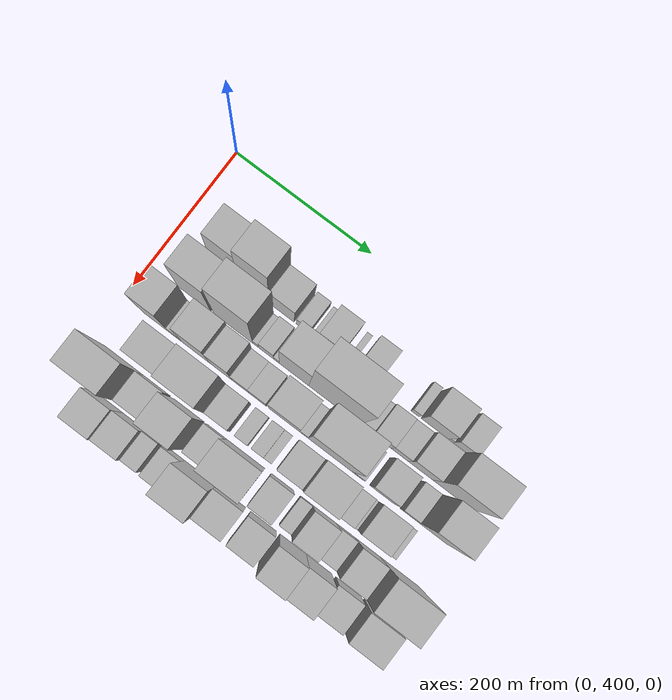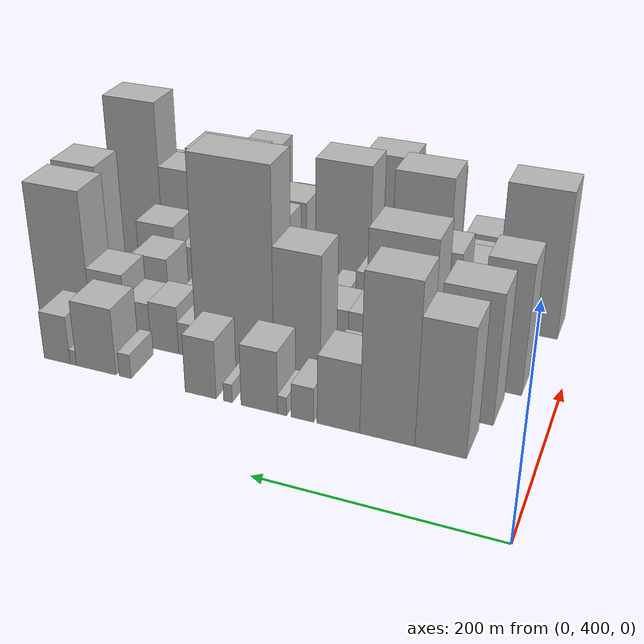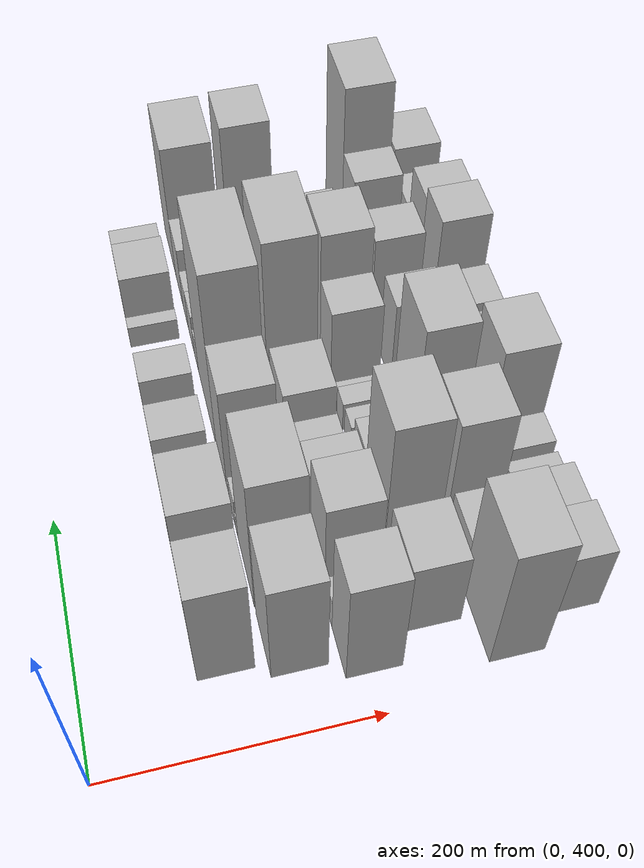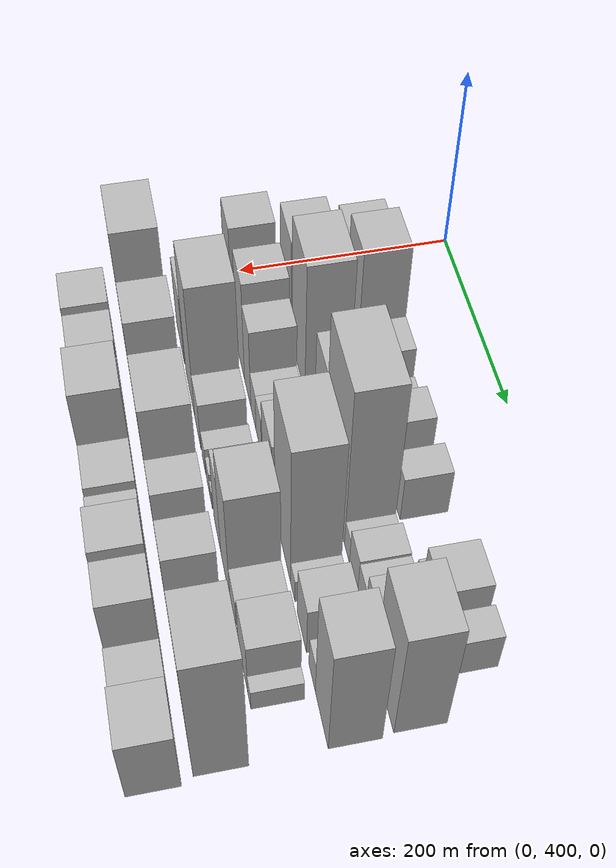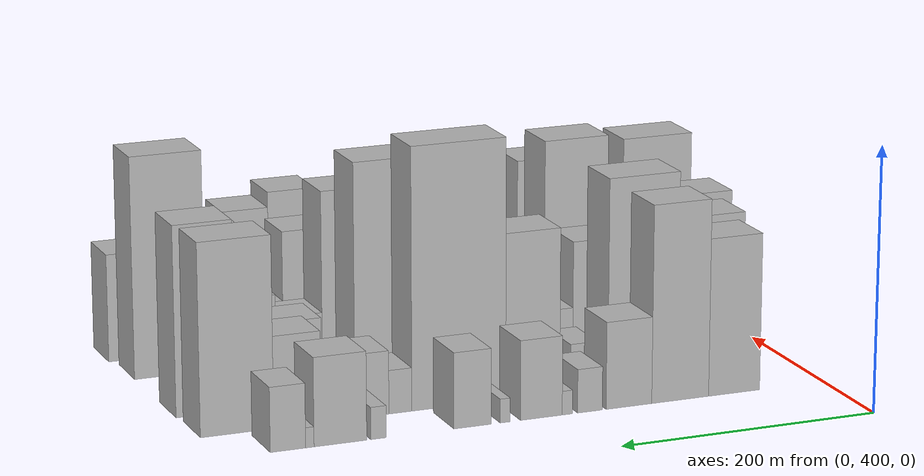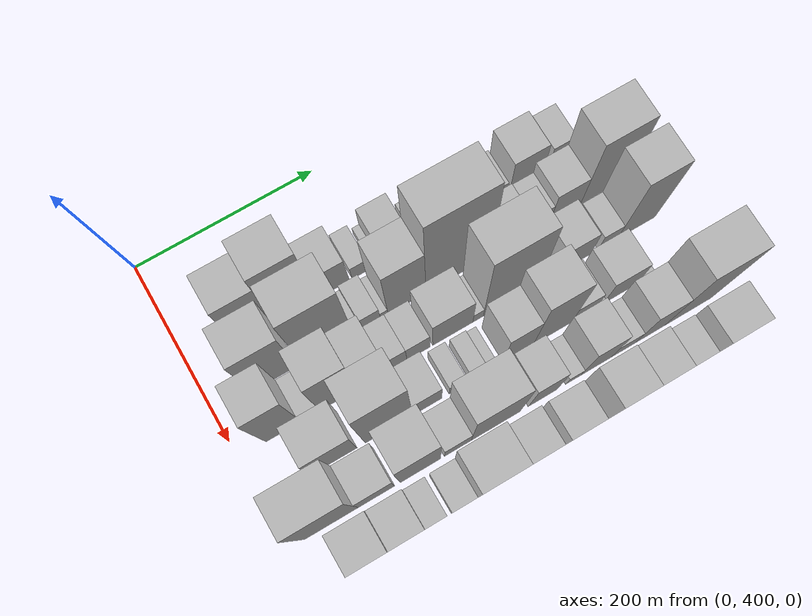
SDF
<sdf version="1.6">
 <world name="default">
  <model name="building_35">
   <static>1</static>
   <pose>100.0000 473.4539 0 0.000000 0.000000 0.000000</pose>
   <link name="link">
    <pose>0 0 60.00 0 0 0</pose>
    <collision name="collision"><geometry><box><size>40.0000 41.6100 120.0000</size></box></geometry></collision>
    <visual name="visual">
     <cast_shadows>0</cast_shadows>
     <geometry><box><size>40.0000 41.6100 120.0000</size></box></geometry>
     <material>
      <script>
       <uri>model://HANNAS_wall/materials/scripts</uri>
       <uri>model://HANNAS_wall/materials/textures</uri>
       <name>vrc/HANNAS_wall</name>
      </script>
     </material>
    </visual>
   </link>
  </model>
  <model name="building_36">
   <static>1</static>
   <pose>100.0000 517.1920 0 0.000000 0.000000 0.000000</pose>
   <link name="link">
    <pose>0 0 75.00 0 0 0</pose>
    <collision name="collision"><geometry><box><size>40.0000 45.8663 150.0000</size></box></geometry></collision>
    <visual name="visual">
     <cast_shadows>0</cast_shadows>
     <geometry><box><size>40.0000 45.8663 150.0000</size></box></geometry>
     <material>
      <script>
       <uri>model://HANNAS_wall/materials/scripts</uri>
       <uri>model://HANNAS_wall/materials/textures</uri>
       <name>vrc/HANNAS_wall</name>
      </script>
     </material>
    </visual>
   </link>
  </model>
  <model name="building_37">
   <static>1</static>
   <pose>100.0000 558.3332 0 0.000000 0.000000 0.000000</pose>
   <link name="link">
    <pose>0 0 33.00 0 0 0</pose>
    <collision name="collision"><geometry><box><size>40.0000 36.4160 66.0000</size></box></geometry></collision>
    <visual name="visual">
     <cast_shadows>0</cast_shadows>
     <geometry><box><size>40.0000 36.4160 66.0000</size></box></geometry>
     <material>
      <script>
       <uri>model://HANNAS_wall/materials/scripts</uri>
       <uri>model://HANNAS_wall/materials/textures</uri>
       <name>vrc/HANNAS_wall</name>
      </script>
     </material>
    </visual>
   </link>
  </model>
  <model name="building_38">
   <static>1</static>
   <pose>100.0000 589.3370 0 0.000000 0.000000 0.000000</pose>
   <link name="link">
    <pose>0 0 16.50 0 0 0</pose>
    <collision name="collision"><geometry><box><size>40.0000 19.5915 33.0000</size></box></geometry></collision>
    <visual name="visual">
     <cast_shadows>0</cast_shadows>
     <geometry><box><size>40.0000 19.5915 33.0000</size></box></geometry>
     <material>
      <script>
       <uri>model://HANNAS_wall/materials/scripts</uri>
       <uri>model://HANNAS_wall/materials/textures</uri>
       <name>vrc/HANNAS_wall</name>
      </script>
     </material>
    </visual>
   </link>
  </model>
  <model name="building_39">
   <static>1</static>
   <pose>100.0000 607.1895 0 0.000000 0.000000 0.000000</pose>
   <link name="link">
    <pose>0 0 9.00 0 0 0</pose>
    <collision name="collision"><geometry><box><size>40.0000 8.1136 18.0000</size></box></geometry></collision>
    <visual name="visual">
     <cast_shadows>0</cast_shadows>
     <geometry><box><size>40.0000 8.1136 18.0000</size></box></geometry>
     <material>
      <script>
       <uri>model://HANNAS_wall/materials/scripts</uri>
       <uri>model://HANNAS_wall/materials/textures</uri>
       <name>vrc/HANNAS_wall</name>
      </script>
     </material>
    </visual>
   </link>
  </model>
  <model name="building_40">
   <static>1</static>
   <pose>100.0000 627.5852 0 0.000000 0.000000 0.000000</pose>
   <link name="link">
    <pose>0 0 30.00 0 0 0</pose>
    <collision name="collision"><geometry><box><size>40.0000 32.6779 60.0000</size></box></geometry></collision>
    <visual name="visual">
     <cast_shadows>0</cast_shadows>
     <geometry><box><size>40.0000 32.6779 60.0000</size></box></geometry>
     <material>
      <script>
       <uri>model://HANNAS_wall/materials/scripts</uri>
       <uri>model://HANNAS_wall/materials/textures</uri>
       <name>vrc/HANNAS_wall</name>
      </script>
     </material>
    </visual>
   </link>
  </model>
  <model name="building_41">
   <static>1</static>
   <pose>100.0000 655.8321 0 0.000000 0.000000 0.000000</pose>
   <link name="link">
    <pose>0 0 9.00 0 0 0</pose>
    <collision name="collision"><geometry><box><size>40.0000 7.8159 18.0000</size></box></geometry></collision>
    <visual name="visual">
     <cast_shadows>0</cast_shadows>
     <geometry><box><size>40.0000 7.8159 18.0000</size></box></geometry>
     <material>
      <script>
       <uri>model://HANNAS_wall/materials/scripts</uri>
       <uri>model://HANNAS_wall/materials/textures</uri>
       <name>vrc/HANNAS_wall</name>
      </script>
     </material>
    </visual>
   </link>
  </model>
  <model name="building_42">
   <static>1</static>
   <pose>100.0000 681.1262 0 0.000000 0.000000 0.000000</pose>
   <link name="link">
    <pose>0 0 28.50 0 0 0</pose>
    <collision name="collision"><geometry><box><size>40.0000 28.7722 57.0000</size></box></geometry></collision>
    <visual name="visual">
     <cast_shadows>0</cast_shadows>
     <geometry><box><size>40.0000 28.7722 57.0000</size></box></geometry>
     <material>
      <script>
       <uri>model://HANNAS_wall/materials/scripts</uri>
       <uri>model://HANNAS_wall/materials/textures</uri>
       <name>vrc/HANNAS_wall</name>
      </script>
     </material>
    </visual>
   </link>
  </model>
  <model name="building_43">
   <static>1</static>
   <pose>100.0000 753.0866 0 0.000000 0.000000 0.000000</pose>
   <link name="link">
    <pose>0 0 12.00 0 0 0</pose>
    <collision name="collision"><geometry><box><size>40.0000 11.7162 24.0000</size></box></geometry></collision>
    <visual name="visual">
     <cast_shadows>0</cast_shadows>
     <geometry><box><size>40.0000 11.7162 24.0000</size></box></geometry>
     <material>
      <script>
       <uri>model://HANNAS_wall/materials/scripts</uri>
       <uri>model://HANNAS_wall/materials/textures</uri>
       <name>vrc/HANNAS_wall</name>
      </script>
     </material>
    </visual>
   </link>
  </model>
  <model name="building_44">
   <static>1</static>
   <pose>100.0000 781.7232 0 0.000000 0.000000 0.000000</pose>
   <link name="link">
    <pose>0 0 33.00 0 0 0</pose>
    <collision name="collision"><geometry><box><size>40.0000 39.5569 66.0000</size></box></geometry></collision>
    <visual name="visual">
     <cast_shadows>0</cast_shadows>
     <geometry><box><size>40.0000 39.5569 66.0000</size></box></geometry>
     <material>
      <script>
       <uri>model://HANNAS_wall/materials/scripts</uri>
       <uri>model://HANNAS_wall/materials/textures</uri>
       <name>vrc/HANNAS_wall</name>
      </script>
     </material>
    </visual>
   </link>
  </model>
  <model name="building_45">
   <static>1</static>
   <pose>100.0000 804.6538 0 0.000000 0.000000 0.000000</pose>
   <link name="link">
    <pose>0 0 7.50 0 0 0</pose>
    <collision name="collision"><geometry><box><size>40.0000 6.3044 15.0000</size></box></geometry></collision>
    <visual name="visual">
     <cast_shadows>0</cast_shadows>
     <geometry><box><size>40.0000 6.3044 15.0000</size></box></geometry>
     <material>
      <script>
       <uri>model://HANNAS_wall/materials/scripts</uri>
       <uri>model://HANNAS_wall/materials/textures</uri>
       <name>vrc/HANNAS_wall</name>
      </script>
     </material>
    </visual>
   </link>
  </model>
  <model name="building_46">
   <static>1</static>
   <pose>100.0000 820.9701 0 0.000000 0.000000 0.000000</pose>
   <link name="link">
    <pose>0 0 24.00 0 0 0</pose>
    <collision name="collision"><geometry><box><size>40.0000 26.3282 48.0000</size></box></geometry></collision>
    <visual name="visual">
     <cast_shadows>0</cast_shadows>
     <geometry><box><size>40.0000 26.3282 48.0000</size></box></geometry>
     <material>
      <script>
       <uri>model://HANNAS_wall/materials/scripts</uri>
       <uri>model://HANNAS_wall/materials/textures</uri>
       <name>vrc/HANNAS_wall</name>
      </script>
     </material>
    </visual>
   </link>
  </model>
  <model name="building_84">
   <static>1</static>
   <pose>149.0000 467.2995 0 0.000000 0.000000 0.000000</pose>
   <link name="link">
    <pose>0 0 61.50 0 0 0</pose>
    <collision name="collision"><geometry><box><size>40.0000 48.5904 123.0000</size></box></geometry></collision>
    <visual name="visual">
     <cast_shadows>0</cast_shadows>
     <geometry><box><size>40.0000 48.5904 123.0000</size></box></geometry>
     <material>
      <script>
       <uri>model://HANNAS_wall/materials/scripts</uri>
       <uri>model://HANNAS_wall/materials/textures</uri>
       <name>vrc/HANNAS_wall</name>
      </script>
     </material>
    </visual>
   </link>
  </model>
  <model name="building_85">
   <static>1</static>
   <pose>149.0000 525.0045 0 0.000000 0.000000 0.000000</pose>
   <link name="link">
    <pose>0 0 79.50 0 0 0</pose>
    <collision name="collision"><geometry><box><size>40.0000 56.8196 159.0000</size></box></geometry></collision>
    <visual name="visual">
     <cast_shadows>0</cast_shadows>
     <geometry><box><size>40.0000 56.8196 159.0000</size></box></geometry>
     <material>
      <script>
       <uri>model://HANNAS_wall/materials/scripts</uri>
       <uri>model://HANNAS_wall/materials/textures</uri>
       <name>vrc/HANNAS_wall</name>
      </script>
     </material>
    </visual>
   </link>
  </model>
  <model name="building_86">
   <static>1</static>
   <pose>149.0000 557.7616 0 0.000000 0.000000 0.000000</pose>
   <link name="link">
    <pose>0 0 10.50 0 0 0</pose>
    <collision name="collision"><geometry><box><size>40.0000 8.6946 21.0000</size></box></geometry></collision>
    <visual name="visual">
     <cast_shadows>0</cast_shadows>
     <geometry><box><size>40.0000 8.6946 21.0000</size></box></geometry>
     <material>
      <script>
       <uri>model://HANNAS_wall/materials/scripts</uri>
       <uri>model://HANNAS_wall/materials/textures</uri>
       <name>vrc/HANNAS_wall</name>
      </script>
     </material>
    </visual>
   </link>
  </model>
  <model name="building_87">
   <static>1</static>
   <pose>149.0000 572.8496 0 0.000000 0.000000 0.000000</pose>
   <link name="link">
    <pose>0 0 18.00 0 0 0</pose>
    <collision name="collision"><geometry><box><size>40.0000 21.4815 36.0000</size></box></geometry></collision>
    <visual name="visual">
     <cast_shadows>0</cast_shadows>
     <geometry><box><size>40.0000 21.4815 36.0000</size></box></geometry>
     <material>
      <script>
       <uri>model://HANNAS_wall/materials/scripts</uri>
       <uri>model://HANNAS_wall/materials/textures</uri>
       <name>vrc/HANNAS_wall</name>
      </script>
     </material>
    </visual>
   </link>
  </model>
  <model name="building_88">
   <static>1</static>
   <pose>149.0000 587.8732 0 0.000000 0.000000 0.000000</pose>
   <link name="link">
    <pose>0 0 9.00 0 0 0</pose>
    <collision name="collision"><geometry><box><size>40.0000 8.5657 18.0000</size></box></geometry></collision>
    <visual name="visual">
     <cast_shadows>0</cast_shadows>
     <geometry><box><size>40.0000 8.5657 18.0000</size></box></geometry>
     <material>
      <script>
       <uri>model://HANNAS_wall/materials/scripts</uri>
       <uri>model://HANNAS_wall/materials/textures</uri>
       <name>vrc/HANNAS_wall</name>
      </script>
     </material>
    </visual>
   </link>
  </model>
  <model name="building_89">
   <static>1</static>
   <pose>149.0000 613.6674 0 0.000000 0.000000 0.000000</pose>
   <link name="link">
    <pose>0 0 63.00 0 0 0</pose>
    <collision name="collision"><geometry><box><size>40.0000 43.0227 126.0000</size></box></geometry></collision>
    <visual name="visual">
     <cast_shadows>0</cast_shadows>
     <geometry><box><size>40.0000 43.0227 126.0000</size></box></geometry>
     <material>
      <script>
       <uri>model://HANNAS_wall/materials/scripts</uri>
       <uri>model://HANNAS_wall/materials/textures</uri>
       <name>vrc/HANNAS_wall</name>
      </script>
     </material>
    </visual>
   </link>
  </model>
  <model name="building_90">
   <static>1</static>
   <pose>149.0000 671.9954 0 0.000000 0.000000 0.000000</pose>
   <link name="link">
    <pose>0 0 99.00 0 0 0</pose>
    <collision name="collision"><geometry><box><size>40.0000 73.6332 198.0000</size></box></geometry></collision>
    <visual name="visual">
     <cast_shadows>0</cast_shadows>
     <geometry><box><size>40.0000 73.6332 198.0000</size></box></geometry>
     <material>
      <script>
       <uri>model://HANNAS_wall/materials/scripts</uri>
       <uri>model://HANNAS_wall/materials/textures</uri>
       <name>vrc/HANNAS_wall</name>
      </script>
     </material>
    </visual>
   </link>
  </model>
  <model name="building_91">
   <static>1</static>
   <pose>149.0000 717.7191 0 0.000000 0.000000 0.000000</pose>
   <link name="link">
    <pose>0 0 16.50 0 0 0</pose>
    <collision name="collision"><geometry><box><size>40.0000 17.8144 33.0000</size></box></geometry></collision>
    <visual name="visual">
     <cast_shadows>0</cast_shadows>
     <geometry><box><size>40.0000 17.8144 33.0000</size></box></geometry>
     <material>
      <script>
       <uri>model://HANNAS_wall/materials/scripts</uri>
       <uri>model://HANNAS_wall/materials/textures</uri>
       <name>vrc/HANNAS_wall</name>
      </script>
     </material>
    </visual>
   </link>
  </model>
  <model name="building_92">
   <static>1</static>
   <pose>149.0000 740.4591 0 0.000000 0.000000 0.000000</pose>
   <link name="link">
    <pose>0 0 24.00 0 0 0</pose>
    <collision name="collision"><geometry><box><size>40.0000 27.6656 48.0000</size></box></geometry></collision>
    <visual name="visual">
     <cast_shadows>0</cast_shadows>
     <geometry><box><size>40.0000 27.6656 48.0000</size></box></geometry>
     <material>
      <script>
       <uri>model://HANNAS_wall/materials/scripts</uri>
       <uri>model://HANNAS_wall/materials/textures</uri>
       <name>vrc/HANNAS_wall</name>
      </script>
     </material>
    </visual>
   </link>
  </model>
  <model name="building_93">
   <static>1</static>
   <pose>149.0000 766.5676 0 0.000000 0.000000 0.000000</pose>
   <link name="link">
    <pose>0 0 22.50 0 0 0</pose>
    <collision name="collision"><geometry><box><size>40.0000 24.5512 45.0000</size></box></geometry></collision>
    <visual name="visual">
     <cast_shadows>0</cast_shadows>
     <geometry><box><size>40.0000 24.5512 45.0000</size></box></geometry>
     <material>
      <script>
       <uri>model://HANNAS_wall/materials/scripts</uri>
       <uri>model://HANNAS_wall/materials/textures</uri>
       <name>vrc/HANNAS_wall</name>
      </script>
     </material>
    </visual>
   </link>
  </model>
  <model name="building_94">
   <static>1</static>
   <pose>149.0000 796.7717 0 0.000000 0.000000 0.000000</pose>
   <link name="link">
    <pose>0 0 34.50 0 0 0</pose>
    <collision name="collision"><geometry><box><size>40.0000 35.8570 69.0000</size></box></geometry></collision>
    <visual name="visual">
     <cast_shadows>0</cast_shadows>
     <geometry><box><size>40.0000 35.8570 69.0000</size></box></geometry>
     <material>
      <script>
       <uri>model://HANNAS_wall/materials/scripts</uri>
       <uri>model://HANNAS_wall/materials/textures</uri>
       <name>vrc/HANNAS_wall</name>
      </script>
     </material>
    </visual>
   </link>
  </model>
  <model name="building_95">
   <static>1</static>
   <pose>149.0000 842.2011 0 0.000000 0.000000 0.000000</pose>
   <link name="link">
    <pose>0 0 72.00 0 0 0</pose>
    <collision name="collision"><geometry><box><size>40.0000 55.0018 144.0000</size></box></geometry></collision>
    <visual name="visual">
     <cast_shadows>0</cast_shadows>
     <geometry><box><size>40.0000 55.0018 144.0000</size></box></geometry>
     <material>
      <script>
       <uri>model://HANNAS_wall/materials/scripts</uri>
       <uri>model://HANNAS_wall/materials/textures</uri>
       <name>vrc/HANNAS_wall</name>
      </script>
     </material>
    </visual>
   </link>
  </model>
  <model name="building_131">
   <static>1</static>
   <pose>198.0000 449.3961 0 0.000000 0.000000 0.000000</pose>
   <link name="link">
    <pose>0 0 63.00 0 0 0</pose>
    <collision name="collision"><geometry><box><size>40.0000 38.1858 126.0000</size></box></geometry></collision>
    <visual name="visual">
     <cast_shadows>0</cast_shadows>
     <geometry><box><size>40.0000 38.1858 126.0000</size></box></geometry>
     <material>
      <script>
       <uri>model://HANNAS_wall/materials/scripts</uri>
       <uri>model://HANNAS_wall/materials/textures</uri>
       <name>vrc/HANNAS_wall</name>
      </script>
     </material>
    </visual>
   </link>
  </model>
  <model name="building_132">
   <static>1</static>
   <pose>198.0000 478.7417 0 0.000000 0.000000 0.000000</pose>
   <link name="link">
    <pose>0 0 18.00 0 0 0</pose>
    <collision name="collision"><geometry><box><size>40.0000 20.5054 36.0000</size></box></geometry></collision>
    <visual name="visual">
     <cast_shadows>0</cast_shadows>
     <geometry><box><size>40.0000 20.5054 36.0000</size></box></geometry>
     <material>
      <script>
       <uri>model://HANNAS_wall/materials/scripts</uri>
       <uri>model://HANNAS_wall/materials/textures</uri>
       <name>vrc/HANNAS_wall</name>
      </script>
     </material>
    </visual>
   </link>
  </model>
  <model name="building_133">
   <static>1</static>
   <pose>198.0000 509.2271 0 0.000000 0.000000 0.000000</pose>
   <link name="link">
    <pose>0 0 61.50 0 0 0</pose>
    <collision name="collision"><geometry><box><size>40.0000 40.4656 123.0000</size></box></geometry></collision>
    <visual name="visual">
     <cast_shadows>0</cast_shadows>
     <geometry><box><size>40.0000 40.4656 123.0000</size></box></geometry>
     <material>
      <script>
       <uri>model://HANNAS_wall/materials/scripts</uri>
       <uri>model://HANNAS_wall/materials/textures</uri>
       <name>vrc/HANNAS_wall</name>
      </script>
     </material>
    </visual>
   </link>
  </model>
  <model name="building_134">
   <static>1</static>
   <pose>198.0000 545.0137 0 0.000000 0.000000 0.000000</pose>
   <link name="link">
    <pose>0 0 49.50 0 0 0</pose>
    <collision name="collision"><geometry><box><size>40.0000 31.1075 99.0000</size></box></geometry></collision>
    <visual name="visual">
     <cast_shadows>0</cast_shadows>
     <geometry><box><size>40.0000 31.1075 99.0000</size></box></geometry>
     <material>
      <script>
       <uri>model://HANNAS_wall/materials/scripts</uri>
       <uri>model://HANNAS_wall/materials/textures</uri>
       <name>vrc/HANNAS_wall</name>
      </script>
     </material>
    </visual>
   </link>
  </model>
  <model name="building_135">
   <static>1</static>
   <pose>198.0000 572.8055 0 0.000000 0.000000 0.000000</pose>
   <link name="link">
    <pose>0 0 24.00 0 0 0</pose>
    <collision name="collision"><geometry><box><size>40.0000 24.4761 48.0000</size></box></geometry></collision>
    <visual name="visual">
     <cast_shadows>0</cast_shadows>
     <geometry><box><size>40.0000 24.4761 48.0000</size></box></geometry>
     <material>
      <script>
       <uri>model://HANNAS_wall/materials/scripts</uri>
       <uri>model://HANNAS_wall/materials/textures</uri>
       <name>vrc/HANNAS_wall</name>
      </script>
     </material>
    </visual>
   </link>
  </model>
  <model name="building_136">
   <static>1</static>
   <pose>198.0000 598.0264 0 0.000000 0.000000 0.000000</pose>
   <link name="link">
    <pose>0 0 24.00 0 0 0</pose>
    <collision name="collision"><geometry><box><size>40.0000 25.9657 48.0000</size></box></geometry></collision>
    <visual name="visual">
     <cast_shadows>0</cast_shadows>
     <geometry><box><size>40.0000 25.9657 48.0000</size></box></geometry>
     <material>
      <script>
       <uri>model://HANNAS_wall/materials/scripts</uri>
       <uri>model://HANNAS_wall/materials/textures</uri>
       <name>vrc/HANNAS_wall</name>
      </script>
     </material>
    </visual>
   </link>
  </model>
  <model name="building_137">
   <static>1</static>
   <pose>198.0000 636.6585 0 0.000000 0.000000 0.000000</pose>
   <link name="link">
    <pose>0 0 39.00 0 0 0</pose>
    <collision name="collision"><geometry><box><size>40.0000 45.2986 78.0000</size></box></geometry></collision>
    <visual name="visual">
     <cast_shadows>0</cast_shadows>
     <geometry><box><size>40.0000 45.2986 78.0000</size></box></geometry>
     <material>
      <script>
       <uri>model://HANNAS_wall/materials/scripts</uri>
       <uri>model://HANNAS_wall/materials/textures</uri>
       <name>vrc/HANNAS_wall</name>
      </script>
     </material>
    </visual>
   </link>
  </model>
  <model name="building_138">
   <static>1</static>
   <pose>198.0000 665.2868 0 0.000000 0.000000 0.000000</pose>
   <link name="link">
    <pose>0 0 13.50 0 0 0</pose>
    <collision name="collision"><geometry><box><size>40.0000 11.9580 27.0000</size></box></geometry></collision>
    <visual name="visual">
     <cast_shadows>0</cast_shadows>
     <geometry><box><size>40.0000 11.9580 27.0000</size></box></geometry>
     <material>
      <script>
       <uri>model://HANNAS_wall/materials/scripts</uri>
       <uri>model://HANNAS_wall/materials/textures</uri>
       <name>vrc/HANNAS_wall</name>
      </script>
     </material>
    </visual>
   </link>
  </model>
  <model name="building_139">
   <static>1</static>
   <pose>198.0000 703.0408 0 0.000000 0.000000 0.000000</pose>
   <link name="link">
    <pose>0 0 88.50 0 0 0</pose>
    <collision name="collision"><geometry><box><size>40.0000 63.5500 177.0000</size></box></geometry></collision>
    <visual name="visual">
     <cast_shadows>0</cast_shadows>
     <geometry><box><size>40.0000 63.5500 177.0000</size></box></geometry>
     <material>
      <script>
       <uri>model://HANNAS_wall/materials/scripts</uri>
       <uri>model://HANNAS_wall/materials/textures</uri>
       <name>vrc/HANNAS_wall</name>
      </script>
     </material>
    </visual>
   </link>
  </model>
  <model name="building_140">
   <static>1</static>
   <pose>198.0000 743.2439 0 0.000000 0.000000 0.000000</pose>
   <link name="link">
    <pose>0 0 15.00 0 0 0</pose>
    <collision name="collision"><geometry><box><size>40.0000 16.8561 30.0000</size></box></geometry></collision>
    <visual name="visual">
     <cast_shadows>0</cast_shadows>
     <geometry><box><size>40.0000 16.8561 30.0000</size></box></geometry>
     <material>
      <script>
       <uri>model://HANNAS_wall/materials/scripts</uri>
       <uri>model://HANNAS_wall/materials/textures</uri>
       <name>vrc/HANNAS_wall</name>
      </script>
     </material>
    </visual>
   </link>
  </model>
  <model name="building_141">
   <static>1</static>
   <pose>198.0000 778.1643 0 0.000000 0.000000 0.000000</pose>
   <link name="link">
    <pose>0 0 31.50 0 0 0</pose>
    <collision name="collision"><geometry><box><size>40.0000 34.9846 63.0000</size></box></geometry></collision>
    <visual name="visual">
     <cast_shadows>0</cast_shadows>
     <geometry><box><size>40.0000 34.9846 63.0000</size></box></geometry>
     <material>
      <script>
       <uri>model://HANNAS_wall/materials/scripts</uri>
       <uri>model://HANNAS_wall/materials/textures</uri>
       <name>vrc/HANNAS_wall</name>
      </script>
     </material>
    </visual>
   </link>
  </model>
  <model name="building_142">
   <static>1</static>
   <pose>198.0000 816.1529 0 0.000000 0.000000 0.000000</pose>
   <link name="link">
    <pose>0 0 19.50 0 0 0</pose>
    <collision name="collision"><geometry><box><size>40.0000 22.9926 39.0000</size></box></geometry></collision>
    <visual name="visual">
     <cast_shadows>0</cast_shadows>
     <geometry><box><size>40.0000 22.9926 39.0000</size></box></geometry>
     <material>
      <script>
       <uri>model://HANNAS_wall/materials/scripts</uri>
       <uri>model://HANNAS_wall/materials/textures</uri>
       <name>vrc/HANNAS_wall</name>
      </script>
     </material>
    </visual>
   </link>
  </model>
  <model name="building_143">
   <static>1</static>
   <pose>198.0000 849.9334 0 0.000000 0.000000 0.000000</pose>
   <link name="link">
    <pose>0 0 72.00 0 0 0</pose>
    <collision name="collision"><geometry><box><size>40.0000 44.5684 144.0000</size></box></geometry></collision>
    <visual name="visual">
     <cast_shadows>0</cast_shadows>
     <geometry><box><size>40.0000 44.5684 144.0000</size></box></geometry>
     <material>
      <script>
       <uri>model://HANNAS_wall/materials/scripts</uri>
       <uri>model://HANNAS_wall/materials/textures</uri>
       <name>vrc/HANNAS_wall</name>
      </script>
     </material>
    </visual>
   </link>
  </model>
  <model name="building_184">
   <static>1</static>
   <pose>247.0000 477.7658 0 0.000000 0.000000 0.000000</pose>
   <link name="link">
    <pose>0 0 43.50 0 0 0</pose>
    <collision name="collision"><geometry><box><size>40.0000 48.4591 87.0000</size></box></geometry></collision>
    <visual name="visual">
     <cast_shadows>0</cast_shadows>
     <geometry><box><size>40.0000 48.4591 87.0000</size></box></geometry>
     <material>
      <script>
       <uri>model://HANNAS_wall/materials/scripts</uri>
       <uri>model://HANNAS_wall/materials/textures</uri>
       <name>vrc/HANNAS_wall</name>
      </script>
     </material>
    </visual>
   </link>
  </model>
  <model name="building_185">
   <static>1</static>
   <pose>247.0000 536.9927 0 0.000000 0.000000 0.000000</pose>
   <link name="link">
    <pose>0 0 82.50 0 0 0</pose>
    <collision name="collision"><geometry><box><size>40.0000 51.9947 165.0000</size></box></geometry></collision>
    <visual name="visual">
     <cast_shadows>0</cast_shadows>
     <geometry><box><size>40.0000 51.9947 165.0000</size></box></geometry>
     <material>
      <script>
       <uri>model://HANNAS_wall/materials/scripts</uri>
       <uri>model://HANNAS_wall/materials/textures</uri>
       <name>vrc/HANNAS_wall</name>
      </script>
     </material>
    </visual>
   </link>
  </model>
  <model name="building_186">
   <static>1</static>
   <pose>247.0000 579.1735 0 0.000000 0.000000 0.000000</pose>
   <link name="link">
    <pose>0 0 30.00 0 0 0</pose>
    <collision name="collision"><geometry><box><size>40.0000 32.3670 60.0000</size></box></geometry></collision>
    <visual name="visual">
     <cast_shadows>0</cast_shadows>
     <geometry><box><size>40.0000 32.3670 60.0000</size></box></geometry>
     <material>
      <script>
       <uri>model://HANNAS_wall/materials/scripts</uri>
       <uri>model://HANNAS_wall/materials/textures</uri>
       <name>vrc/HANNAS_wall</name>
      </script>
     </material>
    </visual>
   </link>
  </model>
  <model name="building_187">
   <static>1</static>
   <pose>247.0000 612.7153 0 0.000000 0.000000 0.000000</pose>
   <link name="link">
    <pose>0 0 18.00 0 0 0</pose>
    <collision name="collision"><geometry><box><size>40.0000 18.7165 36.0000</size></box></geometry></collision>
    <visual name="visual">
     <cast_shadows>0</cast_shadows>
     <geometry><box><size>40.0000 18.7165 36.0000</size></box></geometry>
     <material>
      <script>
       <uri>model://HANNAS_wall/materials/scripts</uri>
       <uri>model://HANNAS_wall/materials/textures</uri>
       <name>vrc/HANNAS_wall</name>
      </script>
     </material>
    </visual>
   </link>
  </model>
  <model name="building_188">
   <static>1</static>
   <pose>247.0000 635.9235 0 0.000000 0.000000 0.000000</pose>
   <link name="link">
    <pose>0 0 16.50 0 0 0</pose>
    <collision name="collision"><geometry><box><size>40.0000 17.7000 33.0000</size></box></geometry></collision>
    <visual name="visual">
     <cast_shadows>0</cast_shadows>
     <geometry><box><size>40.0000 17.7000 33.0000</size></box></geometry>
     <material>
      <script>
       <uri>model://HANNAS_wall/materials/scripts</uri>
       <uri>model://HANNAS_wall/materials/textures</uri>
       <name>vrc/HANNAS_wall</name>
      </script>
     </material>
    </visual>
   </link>
  </model>
  <model name="building_189">
   <static>1</static>
   <pose>247.0000 650.4575 0 0.000000 0.000000 0.000000</pose>
   <link name="link">
    <pose>0 0 12.00 0 0 0</pose>
    <collision name="collision"><geometry><box><size>40.0000 11.3680 24.0000</size></box></geometry></collision>
    <visual name="visual">
     <cast_shadows>0</cast_shadows>
     <geometry><box><size>40.0000 11.3680 24.0000</size></box></geometry>
     <material>
      <script>
       <uri>model://HANNAS_wall/materials/scripts</uri>
       <uri>model://HANNAS_wall/materials/textures</uri>
       <name>vrc/HANNAS_wall</name>
      </script>
     </material>
    </visual>
   </link>
  </model>
  <model name="building_190">
   <static>1</static>
   <pose>247.0000 681.1887 0 0.000000 0.000000 0.000000</pose>
   <link name="link">
    <pose>0 0 48.00 0 0 0</pose>
    <collision name="collision"><geometry><box><size>40.0000 34.0944 96.0000</size></box></geometry></collision>
    <visual name="visual">
     <cast_shadows>0</cast_shadows>
     <geometry><box><size>40.0000 34.0944 96.0000</size></box></geometry>
     <material>
      <script>
       <uri>model://HANNAS_wall/materials/scripts</uri>
       <uri>model://HANNAS_wall/materials/textures</uri>
       <name>vrc/HANNAS_wall</name>
      </script>
     </material>
    </visual>
   </link>
  </model>
  <model name="building_191">
   <static>1</static>
   <pose>247.0000 720.3317 0 0.000000 0.000000 0.000000</pose>
   <link name="link">
    <pose>0 0 72.00 0 0 0</pose>
    <collision name="collision"><geometry><box><size>40.0000 44.1915 144.0000</size></box></geometry></collision>
    <visual name="visual">
     <cast_shadows>0</cast_shadows>
     <geometry><box><size>40.0000 44.1915 144.0000</size></box></geometry>
     <material>
      <script>
       <uri>model://HANNAS_wall/materials/scripts</uri>
       <uri>model://HANNAS_wall/materials/textures</uri>
       <name>vrc/HANNAS_wall</name>
      </script>
     </material>
    </visual>
   </link>
  </model>
  <model name="building_192">
   <static>1</static>
   <pose>247.0000 756.8738 0 0.000000 0.000000 0.000000</pose>
   <link name="link">
    <pose>0 0 25.50 0 0 0</pose>
    <collision name="collision"><geometry><box><size>40.0000 28.8927 51.0000</size></box></geometry></collision>
    <visual name="visual">
     <cast_shadows>0</cast_shadows>
     <geometry><box><size>40.0000 28.8927 51.0000</size></box></geometry>
     <material>
      <script>
       <uri>model://HANNAS_wall/materials/scripts</uri>
       <uri>model://HANNAS_wall/materials/textures</uri>
       <name>vrc/HANNAS_wall</name>
      </script>
     </material>
    </visual>
   </link>
  </model>
  <model name="building_193">
   <static>1</static>
   <pose>247.0000 775.0537 0 0.000000 0.000000 0.000000</pose>
   <link name="link">
    <pose>0 0 9.00 0 0 0</pose>
    <collision name="collision"><geometry><box><size>40.0000 7.4670 18.0000</size></box></geometry></collision>
    <visual name="visual">
     <cast_shadows>0</cast_shadows>
     <geometry><box><size>40.0000 7.4670 18.0000</size></box></geometry>
     <material>
      <script>
       <uri>model://HANNAS_wall/materials/scripts</uri>
       <uri>model://HANNAS_wall/materials/textures</uri>
       <name>vrc/HANNAS_wall</name>
      </script>
     </material>
    </visual>
   </link>
  </model>
  <model name="building_194">
   <static>1</static>
   <pose>247.0000 798.5951 0 0.000000 0.000000 0.000000</pose>
   <link name="link">
    <pose>0 0 34.50 0 0 0</pose>
    <collision name="collision"><geometry><box><size>40.0000 39.6158 69.0000</size></box></geometry></collision>
    <visual name="visual">
     <cast_shadows>0</cast_shadows>
     <geometry><box><size>40.0000 39.6158 69.0000</size></box></geometry>
     <material>
      <script>
       <uri>model://HANNAS_wall/materials/scripts</uri>
       <uri>model://HANNAS_wall/materials/textures</uri>
       <name>vrc/HANNAS_wall</name>
      </script>
     </material>
    </visual>
   </link>
  </model>
  <model name="building_195">
   <static>1</static>
   <pose>247.0000 825.0973 0 0.000000 0.000000 0.000000</pose>
   <link name="link">
    <pose>0 0 13.50 0 0 0</pose>
    <collision name="collision"><geometry><box><size>40.0000 13.3885 27.0000</size></box></geometry></collision>
    <visual name="visual">
     <cast_shadows>0</cast_shadows>
     <geometry><box><size>40.0000 13.3885 27.0000</size></box></geometry>
     <material>
      <script>
       <uri>model://HANNAS_wall/materials/scripts</uri>
       <uri>model://HANNAS_wall/materials/textures</uri>
       <name>vrc/HANNAS_wall</name>
      </script>
     </material>
    </visual>
   </link>
  </model>
  <model name="building_229">
   <static>1</static>
   <pose>296.0000 447.2463 0 0.000000 0.000000 0.000000</pose>
   <link name="link">
    <pose>0 0 73.50 0 0 0</pose>
    <collision name="collision"><geometry><box><size>40.0000 57.8073 147.0000</size></box></geometry></collision>
    <visual name="visual">
     <cast_shadows>0</cast_shadows>
     <geometry><box><size>40.0000 57.8073 147.0000</size></box></geometry>
     <material>
      <script>
       <uri>model://HANNAS_wall/materials/scripts</uri>
       <uri>model://HANNAS_wall/materials/textures</uri>
       <name>vrc/HANNAS_wall</name>
      </script>
     </material>
    </visual>
   </link>
  </model>
  <model name="building_230">
   <static>1</static>
   <pose>296.0000 495.5338 0 0.000000 0.000000 0.000000</pose>
   <link name="link">
    <pose>0 0 33.00 0 0 0</pose>
    <collision name="collision"><geometry><box><size>40.0000 38.7677 66.0000</size></box></geometry></collision>
    <visual name="visual">
     <cast_shadows>0</cast_shadows>
     <geometry><box><size>40.0000 38.7677 66.0000</size></box></geometry>
     <material>
      <script>
       <uri>model://HANNAS_wall/materials/scripts</uri>
       <uri>model://HANNAS_wall/materials/textures</uri>
       <name>vrc/HANNAS_wall</name>
      </script>
     </material>
    </visual>
   </link>
  </model>
  <model name="building_231">
   <static>1</static>
   <pose>296.0000 542.9714 0 0.000000 0.000000 0.000000</pose>
   <link name="link">
    <pose>0 0 69.00 0 0 0</pose>
    <collision name="collision"><geometry><box><size>40.0000 44.1076 138.0000</size></box></geometry></collision>
    <visual name="visual">
     <cast_shadows>0</cast_shadows>
     <geometry><box><size>40.0000 44.1076 138.0000</size></box></geometry>
     <material>
      <script>
       <uri>model://HANNAS_wall/materials/scripts</uri>
       <uri>model://HANNAS_wall/materials/textures</uri>
       <name>vrc/HANNAS_wall</name>
      </script>
     </material>
    </visual>
   </link>
  </model>
  <model name="building_232">
   <static>1</static>
   <pose>296.0000 583.7123 0 0.000000 0.000000 0.000000</pose>
   <link name="link">
    <pose>0 0 25.50 0 0 0</pose>
    <collision name="collision"><geometry><box><size>40.0000 29.3743 51.0000</size></box></geometry></collision>
    <visual name="visual">
     <cast_shadows>0</cast_shadows>
     <geometry><box><size>40.0000 29.3743 51.0000</size></box></geometry>
     <material>
      <script>
       <uri>model://HANNAS_wall/materials/scripts</uri>
       <uri>model://HANNAS_wall/materials/textures</uri>
       <name>vrc/HANNAS_wall</name>
      </script>
     </material>
    </visual>
   </link>
  </model>
  <model name="building_233">
   <static>1</static>
   <pose>296.0000 625.8522 0 0.000000 0.000000 0.000000</pose>
   <link name="link">
    <pose>0 0 70.50 0 0 0</pose>
    <collision name="collision"><geometry><box><size>40.0000 54.9053 141.0000</size></box></geometry></collision>
    <visual name="visual">
     <cast_shadows>0</cast_shadows>
     <geometry><box><size>40.0000 54.9053 141.0000</size></box></geometry>
     <material>
      <script>
       <uri>model://HANNAS_wall/materials/scripts</uri>
       <uri>model://HANNAS_wall/materials/textures</uri>
       <name>vrc/HANNAS_wall</name>
      </script>
     </material>
    </visual>
   </link>
  </model>
  <model name="building_234">
   <static>1</static>
   <pose>296.0000 678.5001 0 0.000000 0.000000 0.000000</pose>
   <link name="link">
    <pose>0 0 46.50 0 0 0</pose>
    <collision name="collision"><geometry><box><size>40.0000 32.3905 93.0000</size></box></geometry></collision>
    <visual name="visual">
     <cast_shadows>0</cast_shadows>
     <geometry><box><size>40.0000 32.3905 93.0000</size></box></geometry>
     <material>
      <script>
       <uri>model://HANNAS_wall/materials/scripts</uri>
       <uri>model://HANNAS_wall/materials/textures</uri>
       <name>vrc/HANNAS_wall</name>
      </script>
     </material>
    </visual>
   </link>
  </model>
  <model name="building_235">
   <static>1</static>
   <pose>296.0000 713.2210 0 0.000000 0.000000 0.000000</pose>
   <link name="link">
    <pose>0 0 15.00 0 0 0</pose>
    <collision name="collision"><geometry><box><size>40.0000 17.0513 30.0000</size></box></geometry></collision>
    <visual name="visual">
     <cast_shadows>0</cast_shadows>
     <geometry><box><size>40.0000 17.0513 30.0000</size></box></geometry>
     <material>
      <script>
       <uri>model://HANNAS_wall/materials/scripts</uri>
       <uri>model://HANNAS_wall/materials/textures</uri>
       <name>vrc/HANNAS_wall</name>
      </script>
     </material>
    </visual>
   </link>
  </model>
  <model name="building_236">
   <static>1</static>
   <pose>296.0000 738.9881 0 0.000000 0.000000 0.000000</pose>
   <link name="link">
    <pose>0 0 51.00 0 0 0</pose>
    <collision name="collision"><geometry><box><size>40.0000 34.4827 102.0000</size></box></geometry></collision>
    <visual name="visual">
     <cast_shadows>0</cast_shadows>
     <geometry><box><size>40.0000 34.4827 102.0000</size></box></geometry>
     <material>
      <script>
       <uri>model://HANNAS_wall/materials/scripts</uri>
       <uri>model://HANNAS_wall/materials/textures</uri>
       <name>vrc/HANNAS_wall</name>
      </script>
     </material>
    </visual>
   </link>
  </model>
  <model name="building_237">
   <static>1</static>
   <pose>296.0000 769.9969 0 0.000000 0.000000 0.000000</pose>
   <link name="link">
    <pose>0 0 24.00 0 0 0</pose>
    <collision name="collision"><geometry><box><size>40.0000 27.5350 48.0000</size></box></geometry></collision>
    <visual name="visual">
     <cast_shadows>0</cast_shadows>
     <geometry><box><size>40.0000 27.5350 48.0000</size></box></geometry>
     <material>
      <script>
       <uri>model://HANNAS_wall/materials/scripts</uri>
       <uri>model://HANNAS_wall/materials/textures</uri>
       <name>vrc/HANNAS_wall</name>
      </script>
     </material>
    </visual>
   </link>
  </model>
  <model name="building_238">
   <static>1</static>
   <pose>296.0000 800.9115 0 0.000000 0.000000 0.000000</pose>
   <link name="link">
    <pose>0 0 52.50 0 0 0</pose>
    <collision name="collision"><geometry><box><size>40.0000 34.2942 105.0000</size></box></geometry></collision>
    <visual name="visual">
     <cast_shadows>0</cast_shadows>
     <geometry><box><size>40.0000 34.2942 105.0000</size></box></geometry>
     <material>
      <script>
       <uri>model://HANNAS_wall/materials/scripts</uri>
       <uri>model://HANNAS_wall/materials/textures</uri>
       <name>vrc/HANNAS_wall</name>
      </script>
     </material>
    </visual>
   </link>
  </model>
  <model name="building_239">
   <static>1</static>
   <pose>296.0000 845.8010 0 0.000000 0.000000 0.000000</pose>
   <link name="link">
    <pose>0 0 85.50 0 0 0</pose>
    <collision name="collision"><geometry><box><size>40.0000 55.4848 171.0000</size></box></geometry></collision>
    <visual name="visual">
     <cast_shadows>0</cast_shadows>
     <geometry><box><size>40.0000 55.4848 171.0000</size></box></geometry>
     <material>
      <script>
       <uri>model://HANNAS_wall/materials/scripts</uri>
       <uri>model://HANNAS_wall/materials/textures</uri>
       <name>vrc/HANNAS_wall</name>
      </script>
     </material>
    </visual>
   </link>
  </model>
  <model name="building_275">
   <static>1</static>
   <pose>345.0000 462.5331 0 0.000000 0.000000 0.000000</pose>
   <link name="link">
    <pose>0 0 37.50 0 0 0</pose>
    <collision name="collision"><geometry><box><size>40.0000 40.8015 75.0000</size></box></geometry></collision>
    <visual name="visual">
     <cast_shadows>0</cast_shadows>
     <geometry><box><size>40.0000 40.8015 75.0000</size></box></geometry>
     <material>
      <script>
       <uri>model://HANNAS_wall/materials/scripts</uri>
       <uri>model://HANNAS_wall/materials/textures</uri>
       <name>vrc/HANNAS_wall</name>
      </script>
     </material>
    </visual>
   </link>
  </model>
  <model name="building_276">
   <static>1</static>
   <pose>345.0000 501.3172 0 0.000000 0.000000 0.000000</pose>
   <link name="link">
    <pose>0 0 33.00 0 0 0</pose>
    <collision name="collision"><geometry><box><size>40.0000 36.7667 66.0000</size></box></geometry></collision>
    <visual name="visual">
     <cast_shadows>0</cast_shadows>
     <geometry><box><size>40.0000 36.7667 66.0000</size></box></geometry>
     <material>
      <script>
       <uri>model://HANNAS_wall/materials/scripts</uri>
       <uri>model://HANNAS_wall/materials/textures</uri>
       <name>vrc/HANNAS_wall</name>
      </script>
     </material>
    </visual>
   </link>
  </model>
  <model name="building_277">
   <static>1</static>
   <pose>345.0000 531.1698 0 0.000000 0.000000 0.000000</pose>
   <link name="link">
    <pose>0 0 22.50 0 0 0</pose>
    <collision name="collision"><geometry><box><size>40.0000 22.9384 45.0000</size></box></geometry></collision>
    <visual name="visual">
     <cast_shadows>0</cast_shadows>
     <geometry><box><size>40.0000 22.9384 45.0000</size></box></geometry>
     <material>
      <script>
       <uri>model://HANNAS_wall/materials/scripts</uri>
       <uri>model://HANNAS_wall/materials/textures</uri>
       <name>vrc/HANNAS_wall</name>
      </script>
     </material>
    </visual>
   </link>
  </model>
  <model name="building_278">
   <static>1</static>
   <pose>345.0000 560.9627 0 0.000000 0.000000 0.000000</pose>
   <link name="link">
    <pose>0 0 25.50 0 0 0</pose>
    <collision name="collision"><geometry><box><size>40.0000 26.6473 51.0000</size></box></geometry></collision>
    <visual name="visual">
     <cast_shadows>0</cast_shadows>
     <geometry><box><size>40.0000 26.6473 51.0000</size></box></geometry>
     <material>
      <script>
       <uri>model://HANNAS_wall/materials/scripts</uri>
       <uri>model://HANNAS_wall/materials/textures</uri>
       <name>vrc/HANNAS_wall</name>
      </script>
     </material>
    </visual>
   </link>
  </model>
  <model name="building_279">
   <static>1</static>
   <pose>345.0000 597.9458 0 0.000000 0.000000 0.000000</pose>
   <link name="link">
    <pose>0 0 66.00 0 0 0</pose>
    <collision name="collision"><geometry><box><size>40.0000 47.3188 132.0000</size></box></geometry></collision>
    <visual name="visual">
     <cast_shadows>0</cast_shadows>
     <geometry><box><size>40.0000 47.3188 132.0000</size></box></geometry>
     <material>
      <script>
       <uri>model://HANNAS_wall/materials/scripts</uri>
       <uri>model://HANNAS_wall/materials/textures</uri>
       <name>vrc/HANNAS_wall</name>
      </script>
     </material>
    </visual>
   </link>
  </model>
  <model name="building_280">
   <static>1</static>
   <pose>345.0000 642.2812 0 0.000000 0.000000 0.000000</pose>
   <link name="link">
    <pose>0 0 34.50 0 0 0</pose>
    <collision name="collision"><geometry><box><size>40.0000 41.3521 69.0000</size></box></geometry></collision>
    <visual name="visual">
     <cast_shadows>0</cast_shadows>
     <geometry><box><size>40.0000 41.3521 69.0000</size></box></geometry>
     <material>
      <script>
       <uri>model://HANNAS_wall/materials/scripts</uri>
       <uri>model://HANNAS_wall/materials/textures</uri>
       <name>vrc/HANNAS_wall</name>
      </script>
     </material>
    </visual>
   </link>
  </model>
  <model name="building_281">
   <static>1</static>
   <pose>345.0000 688.6957 0 0.000000 0.000000 0.000000</pose>
   <link name="link">
    <pose>0 0 34.50 0 0 0</pose>
    <collision name="collision"><geometry><box><size>40.0000 37.4769 69.0000</size></box></geometry></collision>
    <visual name="visual">
     <cast_shadows>0</cast_shadows>
     <geometry><box><size>40.0000 37.4769 69.0000</size></box></geometry>
     <material>
      <script>
       <uri>model://HANNAS_wall/materials/scripts</uri>
       <uri>model://HANNAS_wall/materials/textures</uri>
       <name>vrc/HANNAS_wall</name>
      </script>
     </material>
    </visual>
   </link>
  </model>
  <model name="building_282">
   <static>1</static>
   <pose>345.0000 731.4537 0 0.000000 0.000000 0.000000</pose>
   <link name="link">
    <pose>0 0 60.00 0 0 0</pose>
    <collision name="collision"><geometry><box><size>40.0000 38.0391 120.0000</size></box></geometry></collision>
    <visual name="visual">
     <cast_shadows>0</cast_shadows>
     <geometry><box><size>40.0000 38.0391 120.0000</size></box></geometry>
     <material>
      <script>
       <uri>model://HANNAS_wall/materials/scripts</uri>
       <uri>model://HANNAS_wall/materials/textures</uri>
       <name>vrc/HANNAS_wall</name>
      </script>
     </material>
    </visual>
   </link>
  </model>
  <model name="building_283">
   <static>1</static>
   <pose>345.0000 768.7024 0 0.000000 0.000000 0.000000</pose>
   <link name="link">
    <pose>0 0 54.00 0 0 0</pose>
    <collision name="collision"><geometry><box><size>40.0000 36.4583 108.0000</size></box></geometry></collision>
    <visual name="visual">
     <cast_shadows>0</cast_shadows>
     <geometry><box><size>40.0000 36.4583 108.0000</size></box></geometry>
     <material>
      <script>
       <uri>model://HANNAS_wall/materials/scripts</uri>
       <uri>model://HANNAS_wall/materials/textures</uri>
       <name>vrc/HANNAS_wall</name>
      </script>
     </material>
    </visual>
   </link>
  </model>
  <model name="building_284">
   <static>1</static>
   <pose>345.0000 810.9256 0 0.000000 0.000000 0.000000</pose>
   <link name="link">
    <pose>0 0 30.00 0 0 0</pose>
    <collision name="collision"><geometry><box><size>40.0000 35.9881 60.0000</size></box></geometry></collision>
    <visual name="visual">
     <cast_shadows>0</cast_shadows>
     <geometry><box><size>40.0000 35.9881 60.0000</size></box></geometry>
     <material>
      <script>
       <uri>model://HANNAS_wall/materials/scripts</uri>
       <uri>model://HANNAS_wall/materials/textures</uri>
       <name>vrc/HANNAS_wall</name>
      </script>
     </material>
    </visual>
   </link>
  </model>
  <model name="building_285">
   <static>1</static>
   <pose>345.0000 856.3871 0 0.000000 0.000000 0.000000</pose>
   <link name="link">
    <pose>0 0 42.00 0 0 0</pose>
    <collision name="collision"><geometry><box><size>40.0000 44.9350 84.0000</size></box></geometry></collision>
    <visual name="visual">
     <cast_shadows>0</cast_shadows>
     <geometry><box><size>40.0000 44.9350 84.0000</size></box></geometry>
     <material>
      <script>
       <uri>model://HANNAS_wall/materials/scripts</uri>
       <uri>model://HANNAS_wall/materials/textures</uri>
       <name>vrc/HANNAS_wall</name>
      </script>
     </material>
    </visual>
   </link>
  </model>
 </world>
</sdf>
